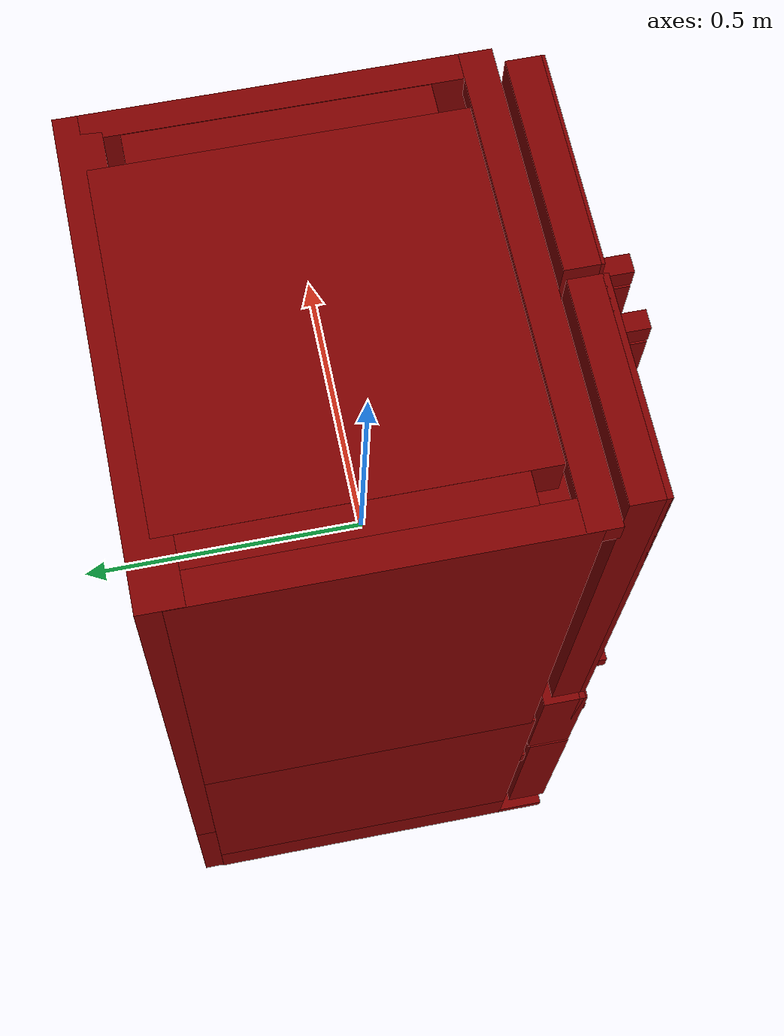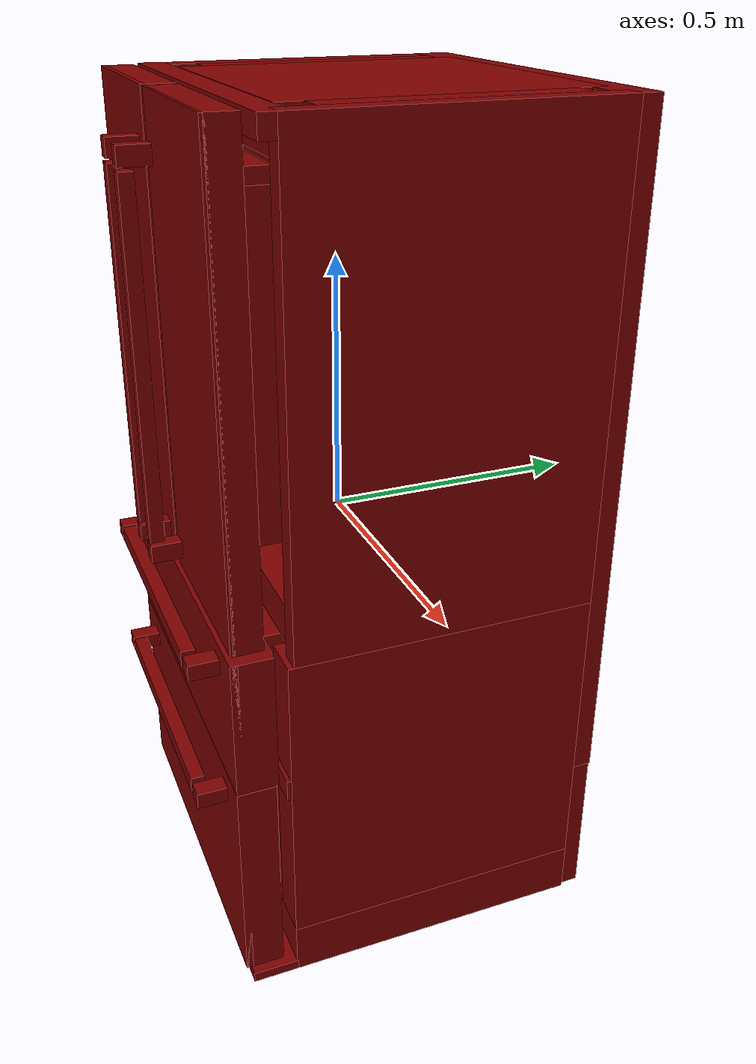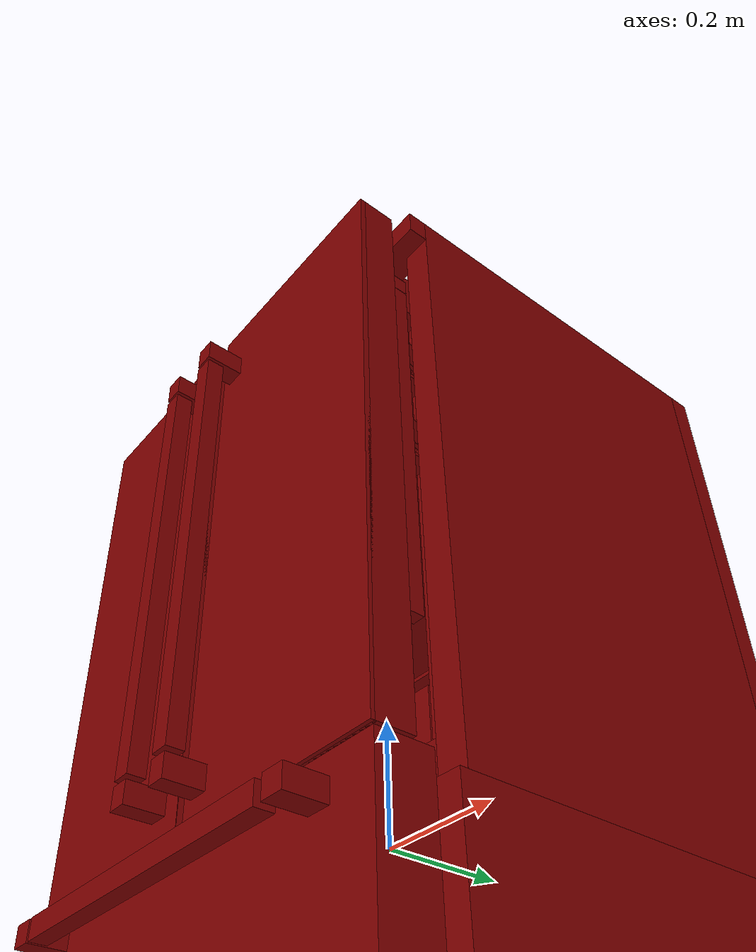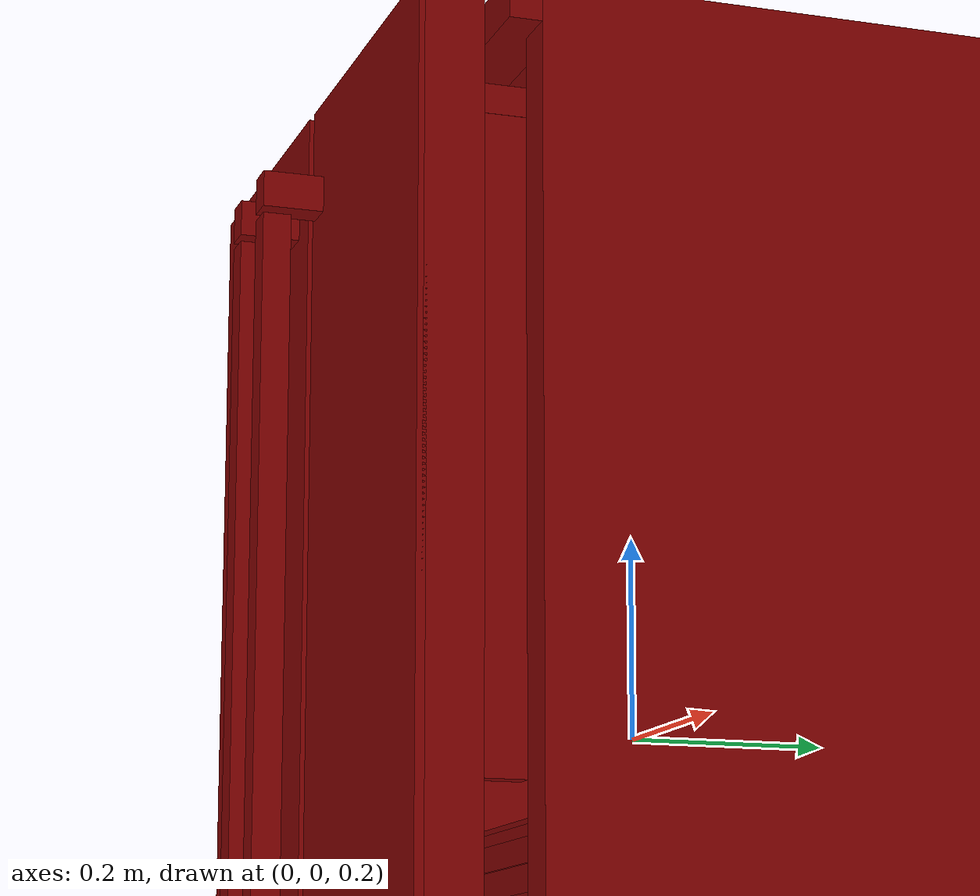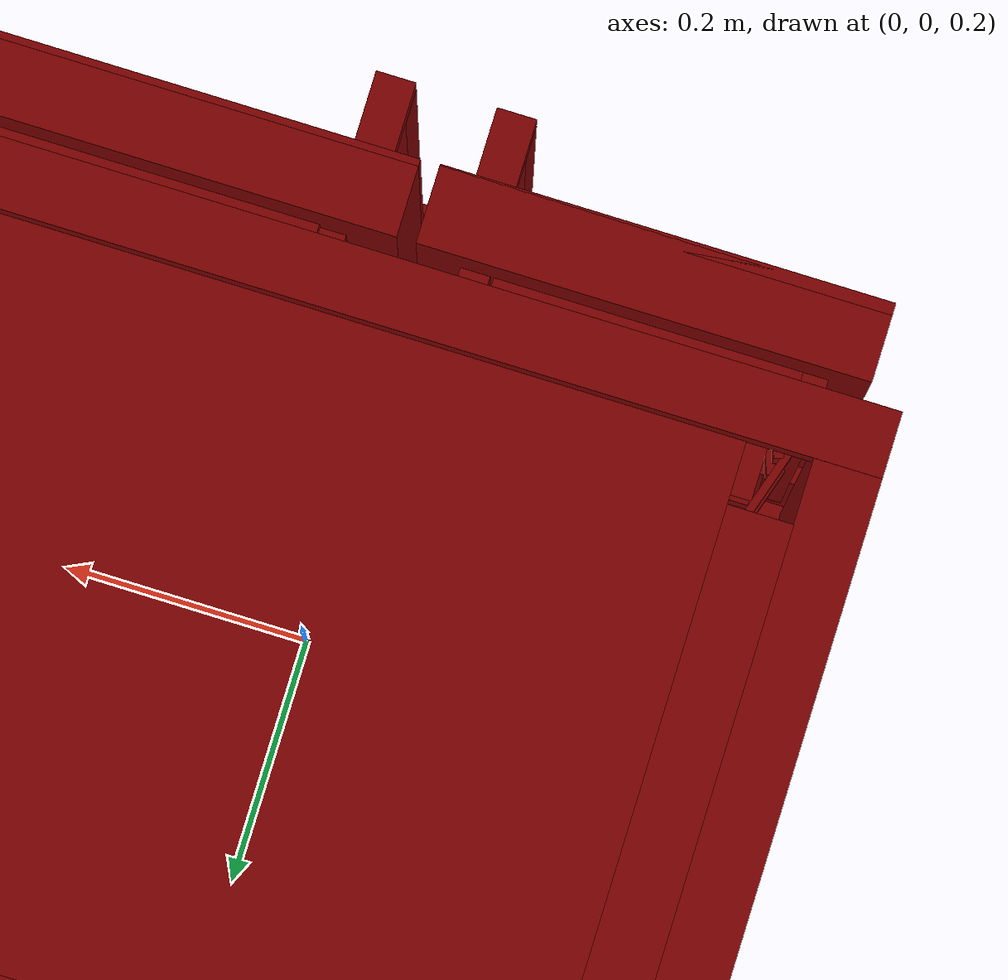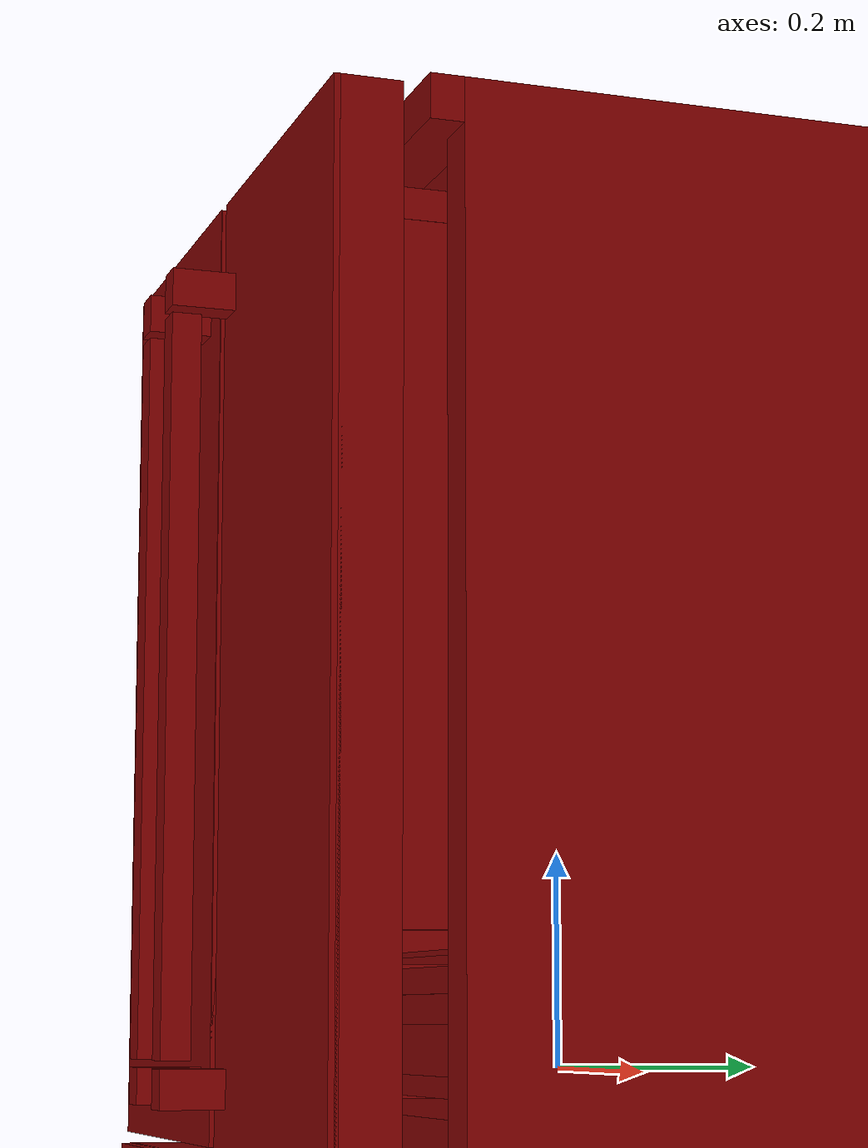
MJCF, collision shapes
<?xml version='1.0' encoding='UTF-8'?>
<mujoco model="model">
  <option timestep="0.002" gravity="0.0 0.0 -9.81"/>
  <compiler angle="radian"/>
  <asset>
    <mesh file="visuals/freezer0.obj" name="freezer0_vis"/>
    <mesh file="visuals/freezer1.obj" name="freezer1_vis"/>
    <mesh file="visuals/fridge_drawer0.obj" name="fridge_drawer0_vis"/>
    <mesh file="visuals/fridge_left_door.obj" name="fridge_left_door_vis"/>
    <mesh file="visuals/fridge_left_door_Clear.obj" name="fridge_left_door_Clear_vis"/>
    <mesh file="visuals/fridge_right_door.obj" name="fridge_right_door_vis"/>
    <mesh file="visuals/fridge_right_door_Clear.obj" name="fridge_right_door_Clear_vis"/>
    <mesh file="visuals/Body001.obj" name="Body001_vis"/>
    <mesh file="visuals/Body001_Clear.obj" name="Body001_Clear_vis"/>
    <texture file="visuals/T_BC001.png" name="Body001_material" type="2d"/>
    <material name="Body001_material" rgba="1 1 1 1.0" texture="Body001_material" shininess="2" specular="2"/>
    <texture file="visuals/T_BC001.png" name="freezer0_material" type="2d"/>
    <material name="freezer0_material" rgba="1 1 1 1.0" texture="freezer0_material" shininess="2" specular="2"/>
    <texture file="visuals/T_BC001.png" name="freezer1_material" type="2d"/>
    <material name="freezer1_material" rgba="1 1 1 1.0" texture="freezer1_material" shininess="2" specular="2"/>
    <texture file="visuals/T_BC001.png" name="fridge_drawer0_material" type="2d"/>
    <material name="fridge_drawer0_material" rgba="1 1 1 1.0" texture="fridge_drawer0_material" shininess="0.6585055291652679" specular="0.3103448502657381"/>
    <texture file="visuals/T_BC001.png" name="fridge_left_door_material" type="2d"/>
    <material name="fridge_left_door_material" rgba="1 1 1 1.0" texture="fridge_left_door_material" shininess="2" specular="2"/>
    <material name="fridge_left_door_Clear_material" rgba="0.749724805355072 0.749724805355072 0.749724805355072 0.699999988079071" shininess="0.2512328028678894" specular="0.3103448502657381"/>
    <texture file="visuals/T_BC001.png" name="fridge_right_door_material" type="2d"/>
    <material name="fridge_right_door_material" rgba="1 1 1 1.0" texture="fridge_right_door_material" shininess="2" specular="2"/>
    <material name="fridge_right_door_Clear_material" rgba="0.749724805355072 0.749724805355072 0.749724805355072 0.699999988079071" shininess="0.2512328028678894" specular="0.3103448502657381"/>
    <material name="Body001_Clear_material" rgba="0.749724805355072 0.749724805355072 0.749724805355072 0.699999988079071" shininess="0.2512328028678894" specular="0.3103448502657381"/>
  </asset>
  <default>
    <default class="visual">
      <geom conaffinity="0" contype="0" group="1" type="mesh"/>
    </default>
    <default class="collision">
      <geom group="0" rgba="0.5 0 0 0.5"/>
    </default>
    <default class="spawn">
      <geom group="0" rgba="1 1 1 0.5" contype="0" conaffinity="0"/>
      <site group="0" rgba="1 1 1 0.5"/>
    </default>
    <default class="region">
      <geom group="1" conaffinity="0" contype="0" rgba="0 1 0 0"/>
    </default>
  </default>
  <worldbody>
    <body>
      <body name="object">
        <geom mesh="Body001_vis" type="mesh" solimp="0.998 0.998 0.001" solref="0.001 1" friction="0.95 0.3 0.1" class="visual" material="Body001_material"/>
        <geom class="collision" type="box" pos="0.00429994 0.08053963 0.41524273" size="0.2578120231628418 0.23192143440246582 0.0024863099679350853" quat="1.0 0.0 0.0 0.0"/>
        <geom class="collision" type="box" pos="0.00429994 0.08053963 0.10372669" size="0.2578120231628418 0.23192211985588074 0.0024863744620233774" quat="1.0 0.0 0.0 0.0"/>
        <geom class="collision" type="box" pos="0.36522140 0.06541250 0.35242346" size="0.021884016692638397 0.29296648502349854 0.45263129472732544" quat="1.0 0.0 0.0 0.0"/>
        <geom class="collision" type="box" pos="-0.36098290 0.06286985 0.34691796" size="0.026121947914361954 0.2955096960067749 0.45772966742515564" quat="1.0 0.0 0.0 0.0"/>
        <geom class="collision" type="box" pos="0.00022345 0.36132324 0.15897222" size="0.3868793547153473 0.03420015051960945 0.6460825204849243" quat="1.0 0.0 0.0 0.0"/>
        <geom class="collision" type="box" pos="-0.00163238 0.33085490 -0.44926712" size="0.38457879424095154 0.06466865539550781 0.352914422750473" quat="1.0 0.0 0.0 0.0"/>
        <geom class="collision" type="box" pos="-0.00058310 0.13760382 -0.63301572" size="0.35854974389076233 0.10725203901529312 0.061925146728754044" quat="0.8052064180374146 0.5929946303367615 -1.3167124518090139e-16 1.2232067335595694e-24"/>
        <geom class="collision" type="box" pos="0.00407962 0.07765477 0.76442716" size="0.2884826362133026 0.28072765469551086 0.04062765836715698" quat="1.0 0.0 0.0 0.0"/>
        <geom class="collision" type="box" pos="-0.00058310 0.07654325 -0.07229346" size="0.35848572850227356 0.2862388491630554 0.037868570536375046" quat="1.0 0.0 0.0 0.0"/>
        <geom class="collision" type="box" pos="-0.34605194 0.05985736 -0.40147525" size="0.04105277359485626 0.29852595925331116 0.30139559507369995" quat="1.0 0.0 0.0 0.0"/>
        <geom class="collision" type="box" pos="0.34605136 0.05985736 -0.40147525" size="0.04105374962091446 0.29852670431137085 0.30139675736427307" quat="1.0 0.0 0.0 0.0"/>
        <geom class="collision" type="box" pos="-0.00163238 -0.21026289 -0.36398423" size="0.38458558917045593 0.03571969270706177 0.020923875272274017" quat="1.0 0.0 0.0 0.0"/>
        <geom class="collision" type="box" pos="0.00000020 0.05985809 -0.75382665" size="0.3871029019355774 0.2985268831253052 0.05122862756252289" quat="1.0 0.0 0.0 0.0"/>
        <geom class="collision" type="box" pos="-0.00058310 0.20006446 -0.59845778" size="0.35854974389076233 0.10667490214109421 0.07130120694637299" quat="0.6569743752479553 0.7539129257202148 -1.6740228450452978e-16 8.92800271459846e-24"/>
        <geom class="collision" type="box" pos="0.30282527 0.07270144 0.34711152" size="0.0396430566906929 0.22914721071720123 0.45794323086738586" quat="1.0 0.0 0.0 0.0"/>
        <geom class="collision" type="box" pos="-0.29257596 0.09765006 0.34691796" size="0.042624130845069885 0.25294435024261475 0.45775076746940613" quat="1.0 0.0 0.0 0.0"/>
        <geom class="collision" type="box" pos="0.00001201 -0.23167586 0.78562674" size="0.3870919346809387 0.025594176724553108 0.019428035244345665" quat="1.0 0.0 0.0 0.0"/>
        <geom class="collision" type="box" pos="0.29462891 -0.28104802 -0.79497960" size="0.09247613698244095 0.04488630220293999 0.010075867176055908" quat="1.0 0.0 0.0 0.0"/>
        <geom class="collision" type="box" pos="-0.29428331 -0.28104799 -0.79497960" size="0.09282137453556061 0.044886354357004166 0.010075912810862064" quat="1.0 0.0 0.0 0.0"/>
        <body name="freezer0">
          <geom class="region" name="reg_freezer0" type="box" pos="-0.00027051500000001283 -0.075523725 -0.553304625" size="0.18287641500000001 0.095773025 0.12618860499999998"/>
          <joint axis="0.0 -1.0 0.0" pos="0.00101368 -0.13383156 -0.56512382" limited="true" name="freezer0_door_joint" range="0.0 0.3" type="slide" damping="1" frictionloss="1" armature=".01" stiffness="0.05"/>
          <geom mesh="freezer0_vis" type="mesh" solimp="0.998 0.998 0.001" solref="0.001 1" friction="0.95 0.3 0.1" class="visual" material="freezer0_material"/>
          <geom class="collision" type="box" pos="0.00346250 -0.10964801 -0.68620357" size="0.22163920104503632 0.15478265285491943 0.0027201969642192125" quat="1.0 0.0 0.0 0.0"/>
          <geom class="collision" type="box" pos="0.21982875 -0.10576967 -0.55323145" size="0.02784782648086548 0.15864557027816772 0.13464730978012085" quat="1.0 0.0 0.0 0.0"/>
          <geom class="collision" type="box" pos="0.00346275 0.07007306 -0.58077767" size="0.24033810198307037 0.008362683467566967 0.09997935593128204" quat="0.9911026954650879 -0.13309930264949799 0.0 0.0"/>
          <geom class="collision" type="box" pos="-0.00009194 -0.29854404 -0.56946692" size="0.3705858886241913 0.037367336452007294 0.21259479224681854" quat="1.0 0.0 0.0 0.0"/>
          <geom class="collision" type="box" pos="0.22542089 0.05179094 -0.54816529" size="0.020509198307991028 0.11963428556919098 0.034643225371837616" quat="0.796074390411377 0.6051988005638123 1.343811153374047e-16 -1.0018506990580435e-22"/>
          <geom class="collision" type="box" pos="-0.22561473 0.05179094 -0.54816529" size="0.020509198307991028 0.11963428556919098 0.034643225371837616" quat="0.796074390411377 0.6051988005638123 1.343811153374047e-16 -1.0018506990580435e-22"/>
          <geom class="collision" type="box" pos="0.00339290 -0.23416711 -0.54298207" size="0.2627294957637787 0.0309009812772274 0.15255071222782135" quat="1.0 0.0 0.0 0.0"/>
          <geom class="collision" type="box" pos="-0.00187906 -0.37971258 -0.40571642" size="0.25582998991012573 0.013592430390417576 0.015477221459150314" quat="1.0 0.0 0.0 0.0" name="freezer0_door_handle_main"/>
          <geom class="collision" type="box" pos="0.28486242 -0.36391133 -0.40571639" size="0.01756289228796959 0.029393699020147324 0.015477233566343784" quat="1.0 0.0 0.0 0.0" name="freezer0_door_handle_2"/>
          <geom class="collision" type="box" pos="-0.28075657 -0.36391133 -0.40571645" size="0.017562907189130783 0.029393699020147324 0.015477248467504978" quat="1.0 0.0 0.0 0.0" name="freezer0_door_handle_1"/>
          <geom class="collision" type="box" pos="-0.21911839 -0.10576967 -0.55323145" size="0.025755496695637703 0.15865816175937653 0.13464730978012085" quat="1.0 0.0 0.0 0.0"/>
          <geom class="collision" type="box" pos="-0.00009194 -0.32934680 -0.56946692" size="0.3705858886241913 0.006564554758369923 0.21259479224681854" quat="1.0 0.0 0.0 0.0" name="freezer0_door_main"/>
        </body>
        <body name="freezer1">
          <geom class="region" name="reg_freezer1" type="box" pos="-0.00027051500000001283 -0.025947825 -0.23928609" size="0.18287641500000001 0.132391385 0.08487766000000002"/>
          <joint axis="0.0 -1.0 0.0" pos="0.00101367 -0.07551161 -0.21655831" limited="true" name="freezer1_door_joint" range="0.0 0.3" type="slide" damping="1" frictionloss="1" armature=".01" stiffness="0.05"/>
          <geom mesh="freezer1_vis" type="mesh" solimp="0.998 0.998 0.001" solref="0.001 1" friction="0.95 0.3 0.1" class="visual" material="freezer1_material"/>
          <geom class="collision" type="box" pos="-0.00731538 -0.06078362 -0.33128613" size="0.22138048708438873 0.20362739264965057 0.0027201951015740633" quat="1.0 0.0 0.0 0.0"/>
          <geom class="collision" type="box" pos="0.22074578 -0.05690526 -0.23913382" size="0.028469989076256752 0.20750996470451355 0.08867991715669632" quat="1.0 0.0 0.0 0.0"/>
          <geom class="collision" type="box" pos="-0.21445107 -0.05690526 -0.23913382" size="0.023944109678268433 0.20751018822193146 0.08868004381656647" quat="1.0 0.0 0.0 0.0"/>
          <geom class="collision" type="box" pos="0.00351829 0.16319073 -0.26036015" size="0.24008996784687042 0.008406518027186394 0.08296908438205719" quat="0.9585145711898804 -0.2850435972213745 9.149510929898043e-18 2.302646245811321e-18"/>
          <geom class="collision" type="box" pos="0.00166587 -0.29653868 -0.21663700" size="0.37027525901794434 0.03937269374728203 0.13647471368312836" quat="1.0 0.0 0.0 0.0"/>
          <geom class="collision" type="box" pos="0.22074578 0.03803797 -0.17746216" size="0.028470372781157494 0.20549361407756805 0.028351524844765663" quat="1.0 0.0 0.0 0.0"/>
          <geom class="collision" type="box" pos="0.22074578 0.13477162 -0.22790354" size="0.018643945455551147 0.04744146391749382 0.0580790638923645" quat="0.9578086137771606 -0.2874067723751068 -6.3817123224809e-17 -2.024741478083862e-24"/>
          <geom class="collision" type="box" pos="-0.22033565 0.13477162 -0.22790354" size="0.018643945455551147 0.04744146391749382 0.0580790638923645" quat="0.9578086137771606 -0.2874067723751068 -6.3817123224809e-17 -2.024741478083862e-24"/>
          <geom class="collision" type="box" pos="-0.22033565 0.03803797 -0.17812773" size="0.028470396995544434 0.20549383759498596 0.0276859812438488" quat="1.0 0.0 0.0 0.0"/>
          <geom class="collision" type="box" pos="-0.00204915 0.22651372 -0.19553304" size="0.24674595892429352 0.017031649127602577 0.010282968170940876" quat="1.0 0.0 0.0 0.0"/>
          <geom class="collision" type="box" pos="0.00380645 -0.22836425 -0.22228651" size="0.24851921200752258 0.03516469523310661 0.10881463438272476" quat="1.0 0.0 0.0 0.0"/>
          <geom class="collision" type="box" pos="-0.28075657 -0.36391133 -0.12384887" size="0.017562922090291977 0.029393699020147324 0.015477264299988747" quat="1.0 0.0 0.0 0.0" name="freezer1_door_handle_1"/>
          <geom class="collision" type="box" pos="0.28486242 -0.36391133 -0.12384881" size="0.01756293699145317 0.029393699020147324 0.01547727920114994" quat="1.0 0.0 0.0 0.0" name="freezer1_door_handle_2"/>
          <geom class="collision" type="box" pos="-0.00187906 -0.37971258 -0.12384884" size="0.25583112239837646 0.013592430390417576 0.015477297827601433" quat="1.0 0.0 0.0 0.0" name="freezer1_door_handle_main"/>
          <geom class="collision" type="box" pos="0.00166587 -0.32762622 -0.21663700" size="0.37027525901794434 0.0057304613292217255 0.13647471368312836" quat="1.0 0.0 0.0 0.0" name="freezer1_door_main"/>
        </body>
        <body name="fridge_drawer0">
          <geom class="region" name="reg_fridge_drawer0" type="box" pos="0.00853008999999999 0.045865735 0.04288651" size="0.19115925 0.164030845 0.04248364"/>
          <joint axis="0.0 -1.0 0.0" pos="0.00791369 0.04509950 0.03411137" limited="true" name="fridge_drawer0_joint" range="0.0 0.4" type="slide" damping="1" frictionloss="1" armature=".01" stiffness="0.05"/>
          <geom mesh="fridge_drawer0_vis" type="mesh" solimp="0.998 0.998 0.001" solref="0.001 1" friction="0.95 0.3 0.1" class="visual" material="fridge_drawer0_material"/>
          <geom class="collision" type="box" pos="0.00808736 -0.13497960 0.08540598" size="0.19737645983695984 0.007127725053578615 0.006802691146731377" quat="1.0 0.0 0.0 0.0"/>
          <geom class="collision" type="box" pos="-0.20990857 0.04549089 0.03437742" size="0.021897634491324425 0.19014325737953186 0.05790973827242851" quat="1.0 0.0 0.0 0.0"/>
          <geom class="collision" type="box" pos="0.00735539 0.22654619 0.03437742" size="0.19566050171852112 0.010331028141081333 0.05791036784648895" quat="1.0 0.0 0.0 0.0"/>
          <geom class="collision" type="box" pos="0.00665960 0.04327609 -0.01403625" size="0.23699535429477692 0.1879308670759201 0.010060291737318039" quat="1.0 0.0 0.0 0.0"/>
          <geom class="collision" type="box" pos="0.00808736 -0.14322565 0.07998265" size="0.19737647473812103 0.0017362789949402213 0.012096093967556953" quat="1.0 0.0 0.0 0.0"/>
          <geom class="collision" type="box" pos="0.00808736 -0.13629312 0.01792400" size="0.19737492501735687 0.008400548249483109 0.02294149249792099" quat="1.0 0.0 0.0 0.0"/>
          <geom class="collision" type="box" pos="0.00808736 -0.12626548 0.04385847" size="0.19737647473812103 0.0017362789949402213 0.048016659915447235" quat="1.0 0.0 0.0 0.0"/>
          <geom class="collision" type="box" pos="0.17681504 -0.13492932 0.06342971" size="0.029539743438363075 0.010116309858858585 0.021811433136463165" quat="1.0 0.0 0.0 0.0"/>
          <geom class="collision" type="box" pos="0.22614014 0.04547463 0.03437742" size="0.021860258653759956 0.1901286542415619 0.057910170406103134" quat="1.0 0.0 0.0 0.0"/>
          <geom class="collision" type="box" pos="0.00648502 -0.12695871 0.06054501" size="0.14187918603420258 0.002305061789229512 0.021040746942162514" quat="1.0 0.0 0.0 0.0"/>
          <geom class="collision" type="box" pos="-0.16343053 -0.13492932 0.06342971" size="0.029539743438363075 0.010116365738213062 0.021811502054333687" quat="1.0 0.0 0.0 0.0"/>
        </body>
        <body name="fridge_left_door">
          <joint axis="0.0 0.0 -1.0" pos="-0.34544427 -0.31172749 0.36478308" limited="true" name="fridge_left_door_joint" range="0.0 1.5707963267948966" type="hinge" damping="1" frictionloss="1" armature=".01" stiffness="0.05"/>
          <geom mesh="fridge_left_door_vis" type="mesh" solimp="0.998 0.998 0.001" solref="0.001 1" friction="0.95 0.3 0.1" class="visual" material="fridge_left_door_material"/>
          <geom class="collision" type="box" pos="-0.05180522 -0.37971258 0.34535042" size="0.015476447530090809 0.013592430390417576 0.3356543183326721" quat="1.0 0.0 0.0 0.0" name="fridge_left_door_handle_main"/>
          <geom class="collision" type="box" pos="-0.05180522 -0.36391133 -0.01431408" size="0.015477169305086136 0.029393699020147324 0.01669370010495186" quat="1.0 0.0 0.0 0.0" name="fridge_left_door_handle_1"/>
          <geom class="collision" type="box" pos="-0.05180522 -0.36391133 0.70518908" size="0.015477153472602367 0.029393699020147324 0.01756278984248638" quat="1.0 0.0 0.0 0.0" name="fridge_left_door_handle_2"/>
          <geom class="collision" type="box" pos="-0.19205970 -0.22383907 0.40688360" size="0.11058793216943741 0.05434567481279373 0.0026560176629573107" quat="1.0 0.0 0.0 0.0"/>
          <geom class="collision" type="box" pos="-0.07356167 -0.19498489 0.42777664" size="0.003092939266934991 0.02805575355887413 0.021901151165366173" quat="0.9885798096656799 0.0 0.0 0.15069818496704102"/>
          <geom class="collision" type="box" pos="-0.19003563 -0.17521169 0.44392169" size="0.11059349030256271 0.0017140626441687346 0.004185756202787161" quat="0.9622097015380859 -0.2723095715045929 -0.0 0.0"/>
          <geom class="collision" type="box" pos="-0.08153414 -0.25062093 0.42777664" size="0.0028704835567623377 0.01288655772805214 0.021901151165366173" quat="0.9840865731239319 0.0 -0.0 -0.1776898056268692"/>
          <geom class="collision" type="box" pos="-0.09724594 -0.27157285 0.42952520" size="0.0033591128885746002 0.01288655772805214 0.019200073555111885" quat="0.8508251905441284 0.0 -0.0 -0.5254489183425903"/>
          <geom class="collision" type="box" pos="-0.11413494 -0.27711564 0.42747924" size="0.0019354462856426835 0.005980806425213814 0.017154110595583916" quat="0.7541599273681641 0.0 -0.0 -0.6566908359527588"/>
          <geom class="collision" type="box" pos="-0.19156798 -0.27733248 0.41498447" size="0.07109253853559494 0.0015521845780313015 0.005146943964064121" quat="1.0 0.0 0.0 0.0"/>
          <geom class="collision" type="box" pos="-0.07589169 -0.22703306 0.42777664" size="0.0038647258188575506 0.01288655772805214 0.021901151165366173" quat="0.9840865731239319 0.0 -0.0 -0.1776898056268692"/>
          <geom class="collision" type="box" pos="-0.30819899 -0.22703306 0.42947826" size="0.0038647258188575506 0.01288655772805214 0.021901151165366173" quat="0.9840865731239319 0.0 0.0 0.1776898205280304"/>
          <geom class="collision" type="box" pos="-0.26995576 -0.27711564 0.42918086" size="0.0019354462856426835 0.005980806425213814 0.017154110595583916" quat="0.7541599273681641 0.0 0.0 0.6566908359527588"/>
          <geom class="collision" type="box" pos="-0.28684477 -0.27157285 0.43122682" size="0.0033591128885746002 0.01288655772805214 0.019200073555111885" quat="0.8508251905441284 0.0 0.0 0.5254489183425903"/>
          <geom class="collision" type="box" pos="-0.30255658 -0.25062093 0.42947826" size="0.0028704835567623377 0.01288655772805214 0.021901151165366173" quat="0.9840865731239319 0.0 0.0 0.1776898205280304"/>
          <geom class="collision" type="box" pos="-0.31052903 -0.19498489 0.42947826" size="0.003092939266934991 0.02805575355887413 0.021901151165366173" quat="0.9885798096656799 0.0 -0.0 -0.15069817006587982"/>
          <geom class="collision" type="box" pos="-0.19003563 -0.17521169 0.60272768" size="0.11059349030256271 0.0017140626441687346 0.004185756202787161" quat="0.9622097015380859 -0.2723095715045929 -0.0 0.0"/>
          <geom class="collision" type="box" pos="-0.31052903 -0.19498489 0.58828429" size="0.003092939266934991 0.02805575355887413 0.021901151165366173" quat="0.9885798096656799 0.0 -0.0 -0.15069817006587982"/>
          <geom class="collision" type="box" pos="-0.30255658 -0.25062093 0.58828429" size="0.0028704835567623377 0.01288655772805214 0.021901151165366173" quat="0.9840865731239319 0.0 0.0 0.1776898205280304"/>
          <geom class="collision" type="box" pos="-0.28684477 -0.27157285 0.59003285" size="0.0033591128885746002 0.01288655772805214 0.019200073555111885" quat="0.8508251905441284 0.0 0.0 0.5254489183425903"/>
          <geom class="collision" type="box" pos="-0.26995576 -0.27711564 0.58798686" size="0.0019354462856426835 0.005980806425213814 0.017154110595583916" quat="0.7541599273681641 0.0 0.0 0.6566908359527588"/>
          <geom class="collision" type="box" pos="-0.30819899 -0.22703306 0.58828429" size="0.0038647258188575506 0.01288655772805214 0.021901151165366173" quat="0.9840865731239319 0.0 0.0 0.1776898205280304"/>
          <geom class="collision" type="box" pos="-0.07589169 -0.22703306 0.58658263" size="0.0038647258188575506 0.01288655772805214 0.021901151165366173" quat="0.9840865731239319 0.0 -0.0 -0.1776898056268692"/>
          <geom class="collision" type="box" pos="-0.11413494 -0.27711564 0.58628521" size="0.0019354462856426835 0.005980806425213814 0.017154110595583916" quat="0.7541599273681641 0.0 -0.0 -0.6566908359527588"/>
          <geom class="collision" type="box" pos="-0.09724594 -0.27157285 0.58833119" size="0.0033591128885746002 0.01288655772805214 0.019200073555111885" quat="0.8508251905441284 0.0 -0.0 -0.5254489183425903"/>
          <geom class="collision" type="box" pos="-0.08153414 -0.25062093 0.58658263" size="0.0028704835567623377 0.01288655772805214 0.021901151165366173" quat="0.9840865731239319 0.0 -0.0 -0.1776898056268692"/>
          <geom class="collision" type="box" pos="-0.07356167 -0.19498489 0.58658263" size="0.003092939266934991 0.02805575355887413 0.021901151165366173" quat="0.9885798096656799 0.0 0.0 0.15069818496704102"/>
          <geom class="collision" type="box" pos="-0.19156798 -0.27733248 0.57379052" size="0.07109261304140091 0.0015521845780313015 0.005146951414644718" quat="1.0 0.0 0.0 0.0"/>
          <geom class="collision" type="box" pos="-0.19205970 -0.22383907 0.56568965" size="0.11059463024139404 0.05434567481279373 0.002656175522133708" quat="1.0 0.0 0.0 0.0"/>
          <geom class="collision" type="box" pos="-0.18541226 -0.30130544 0.36844772" size="0.17394804954528809 0.029942452907562256 0.4366070330142975" quat="1.0 0.0 0.0 0.0"/>
          <geom class="collision" type="box" pos="-0.05693918 -0.25041267 0.34733826" size="0.011535625904798508 0.026942642405629158 0.3783116936683655" quat="1.0 0.0 0.0 0.0"/>
          <geom class="collision" type="box" pos="-0.31978807 -0.25041267 0.41982177" size="0.009782965295016766 0.026942642405629158 0.30562931299209595" quat="1.0 0.0 0.0 0.0"/>
          <geom class="collision" type="box" pos="-0.19056979 -0.25041267 0.71564171" size="0.11949507147073746 0.02694264054298401 0.01004157867282629" quat="1.0 0.0 0.0 0.0"/>
          <geom class="collision" type="box" pos="-0.18541226 -0.32725712 0.36844778" size="0.17394804954528809 0.004683855455368757 0.43660709261894226" quat="1.0 0.0 0.0 0.0" name="fridge_left_door_main"/>
          <body name="fridge_left_door_Clear">
            <geom mesh="fridge_left_door_Clear_vis" type="mesh" solimp="0.998 0.998 0.001" solref="0.001 1" friction="0.95 0.3 0.1" class="visual" material="fridge_left_door_Clear_material"/>
            <geom class="collision" type="box" pos="-0.19205970 -0.22383907 0.40688360" size="0.11058793216943741 0.05434567481279373 0.0026560176629573107" quat="1.0 0.0 0.0 0.0"/>
            <geom class="collision" type="box" pos="-0.07356167 -0.19498489 0.42777664" size="0.003092939266934991 0.02805575355887413 0.021901151165366173" quat="0.9885798096656799 0.0 0.0 0.15069818496704102"/>
            <geom class="collision" type="box" pos="-0.19003563 -0.17521169 0.44392169" size="0.11059349030256271 0.0017140626441687346 0.004185756202787161" quat="0.9622097015380859 -0.2723095715045929 -0.0 0.0"/>
            <geom class="collision" type="box" pos="-0.08153414 -0.25062093 0.42777664" size="0.0028704835567623377 0.01288655772805214 0.021901151165366173" quat="0.9840865731239319 0.0 -0.0 -0.1776898056268692"/>
            <geom class="collision" type="box" pos="-0.09724594 -0.27157285 0.42952520" size="0.0033591128885746002 0.01288655772805214 0.019200073555111885" quat="0.8508251905441284 0.0 -0.0 -0.5254489183425903"/>
            <geom class="collision" type="box" pos="-0.11413494 -0.27711564 0.42747924" size="0.0019354462856426835 0.005980806425213814 0.017154110595583916" quat="0.7541599273681641 0.0 -0.0 -0.6566908359527588"/>
            <geom class="collision" type="box" pos="-0.19156798 -0.27733248 0.41498447" size="0.07109253853559494 0.0015521845780313015 0.005146943964064121" quat="1.0 0.0 0.0 0.0"/>
            <geom class="collision" type="box" pos="-0.07589169 -0.22703306 0.42777664" size="0.0038647258188575506 0.01288655772805214 0.021901151165366173" quat="0.9840865731239319 0.0 -0.0 -0.1776898056268692"/>
            <geom class="collision" type="box" pos="-0.30819899 -0.22703306 0.42947826" size="0.0038647258188575506 0.01288655772805214 0.021901151165366173" quat="0.9840865731239319 0.0 0.0 0.1776898205280304"/>
            <geom class="collision" type="box" pos="-0.26995576 -0.27711564 0.42918086" size="0.0019354462856426835 0.005980806425213814 0.017154110595583916" quat="0.7541599273681641 0.0 0.0 0.6566908359527588"/>
            <geom class="collision" type="box" pos="-0.28684477 -0.27157285 0.43122682" size="0.0033591128885746002 0.01288655772805214 0.019200073555111885" quat="0.8508251905441284 0.0 0.0 0.5254489183425903"/>
            <geom class="collision" type="box" pos="-0.30255658 -0.25062093 0.42947826" size="0.0028704835567623377 0.01288655772805214 0.021901151165366173" quat="0.9840865731239319 0.0 0.0 0.1776898205280304"/>
            <geom class="collision" type="box" pos="-0.31052903 -0.19498489 0.42947826" size="0.003092939266934991 0.02805575355887413 0.021901151165366173" quat="0.9885798096656799 0.0 -0.0 -0.15069817006587982"/>
            <geom class="collision" type="box" pos="-0.19003563 -0.17521169 0.60272768" size="0.11059349030256271 0.0017140626441687346 0.004185756202787161" quat="0.9622097015380859 -0.2723095715045929 -0.0 0.0"/>
            <geom class="collision" type="box" pos="-0.31052903 -0.19498489 0.58828429" size="0.003092939266934991 0.02805575355887413 0.021901151165366173" quat="0.9885798096656799 0.0 -0.0 -0.15069817006587982"/>
            <geom class="collision" type="box" pos="-0.30255658 -0.25062093 0.58828429" size="0.0028704835567623377 0.01288655772805214 0.021901151165366173" quat="0.9840865731239319 0.0 0.0 0.1776898205280304"/>
            <geom class="collision" type="box" pos="-0.28684477 -0.27157285 0.59003285" size="0.0033591128885746002 0.01288655772805214 0.019200073555111885" quat="0.8508251905441284 0.0 0.0 0.5254489183425903"/>
            <geom class="collision" type="box" pos="-0.26995576 -0.27711564 0.58798686" size="0.0019354462856426835 0.005980806425213814 0.017154110595583916" quat="0.7541599273681641 0.0 0.0 0.6566908359527588"/>
            <geom class="collision" type="box" pos="-0.30819899 -0.22703306 0.58828429" size="0.0038647258188575506 0.01288655772805214 0.021901151165366173" quat="0.9840865731239319 0.0 0.0 0.1776898205280304"/>
            <geom class="collision" type="box" pos="-0.07589169 -0.22703306 0.58658263" size="0.0038647258188575506 0.01288655772805214 0.021901151165366173" quat="0.9840865731239319 0.0 -0.0 -0.1776898056268692"/>
            <geom class="collision" type="box" pos="-0.11413494 -0.27711564 0.58628521" size="0.0019354462856426835 0.005980806425213814 0.017154110595583916" quat="0.7541599273681641 0.0 -0.0 -0.6566908359527588"/>
            <geom class="collision" type="box" pos="-0.09724594 -0.27157285 0.58833119" size="0.0033591128885746002 0.01288655772805214 0.019200073555111885" quat="0.8508251905441284 0.0 -0.0 -0.5254489183425903"/>
            <geom class="collision" type="box" pos="-0.08153414 -0.25062093 0.58658263" size="0.0028704835567623377 0.01288655772805214 0.021901151165366173" quat="0.9840865731239319 0.0 -0.0 -0.1776898056268692"/>
            <geom class="collision" type="box" pos="-0.07356167 -0.19498489 0.58658263" size="0.003092939266934991 0.02805575355887413 0.021901151165366173" quat="0.9885798096656799 0.0 0.0 0.15069818496704102"/>
            <geom class="collision" type="box" pos="-0.19156798 -0.27733248 0.57379052" size="0.07109261304140091 0.0015521845780313015 0.005146951414644718" quat="1.0 0.0 0.0 0.0"/>
            <geom class="collision" type="box" pos="-0.19205970 -0.22383907 0.56568965" size="0.11059463024139404 0.05434567481279373 0.002656175522133708" quat="1.0 0.0 0.0 0.0"/>
          </body>
        </body>
        <body name="fridge_right_door">
          <joint axis="0.0 0.0 1.0" pos="0.35031574 -0.31172749 0.36478308" limited="true" name="fridge_right_door_joint" range="0.0 1.5707963267948966" type="hinge" damping="1" frictionloss="1" armature=".01" stiffness="0.05"/>
          <geom mesh="fridge_right_door_vis" type="mesh" solimp="0.998 0.998 0.001" solref="0.001 1" friction="0.95 0.3 0.1" class="visual" material="fridge_right_door_material"/>
          <geom class="collision" type="box" pos="0.04179394 -0.36391133 -0.01518319" size="0.01547718420624733 0.029393699020147324 0.01756281964480877" quat="1.0 0.0 0.0 0.0" name="fridge_right_door_handle_1"/>
          <geom class="collision" type="box" pos="0.04179394 -0.36391133 0.70518908" size="0.015477199107408524 0.029393699020147324 0.017562834545969963" quat="1.0 0.0 0.0 0.0" name="fridge_right_door_handle_2"/>
          <geom class="collision" type="box" pos="0.04179394 -0.37971258 0.34535042" size="0.015477212145924568 0.013592430390417576 0.33567845821380615" quat="1.0 0.0 0.0 0.0" name="fridge_right_door_handle_main"/>
          <geom class="collision" type="box" pos="0.18544730 -0.21910607 0.56586734" size="0.11692734062671661 0.05434567481279373 0.00310175190679729" quat="1.0 0.0 0.0 0.0"/>
          <geom class="collision" type="box" pos="0.18669943 -0.27689018 0.57296804" size="0.0901479423046112 0.0015521845780313015 0.005656151100993156" quat="1.0 0.0 0.0 0.0"/>
          <geom class="collision" type="box" pos="0.06166650 -0.22365172 0.58858213" size="0.0038647258188575506 0.01288655772805214 0.021901151165366173" quat="0.9840865731239319 0.0 0.0 0.1776898205280304"/>
          <geom class="collision" type="box" pos="0.09382745 -0.27661103 0.58524010" size="0.0019354462856426835 0.005980806425213814 0.017154110595583916" quat="0.7541599273681641 0.0 0.0 0.6566908359527588"/>
          <geom class="collision" type="box" pos="0.07787337 -0.26987624 0.58985821" size="0.0033591128885746002 0.01288655772805214 0.019200073555111885" quat="0.8973978161811829 0.0 0.0 0.4412223994731903"/>
          <geom class="collision" type="box" pos="0.06747663 -0.24763073 0.58989045" size="0.0028704835567623377 0.01288655772805214 0.021901151165366173" quat="0.9953531622886658 0.0 0.0 0.09629158675670624"/>
          <geom class="collision" type="box" pos="0.06031815 -0.19025190 0.58907983" size="0.003092939266934991 0.02805575169622898 0.021901151165366173" quat="0.9940382242202759 0.0 -0.0 -0.10903210192918777"/>
          <geom class="collision" type="box" pos="0.18843194 -0.16964587 0.60559198" size="0.11775068938732147 0.0017140626441687346 0.004185756202787161" quat="0.9622097015380859 -0.2723095715045929 -0.0 0.0"/>
          <geom class="collision" type="box" pos="0.31044748 -0.19025190 0.58907983" size="0.003092939266934991 0.02805575169622898 0.021901151165366173" quat="0.9940382242202759 0.0 0.0 0.10903210937976837"/>
          <geom class="collision" type="box" pos="0.30604672 -0.24763073 0.58989045" size="0.0028704835567623377 0.01288655772805214 0.021901151165366173" quat="0.9953531622886658 0.0 -0.0 -0.09629159420728683"/>
          <geom class="collision" type="box" pos="0.29616477 -0.26987624 0.58985821" size="0.0033591128885746002 0.01288655772805214 0.019200073555111885" quat="0.8973978161811829 0.0 -0.0 -0.4412223994731903"/>
          <geom class="collision" type="box" pos="0.28021070 -0.27661103 0.58524010" size="0.0019354462856426835 0.005980806425213814 0.017154110595583916" quat="0.7541599273681641 0.0 -0.0 -0.6566908359527588"/>
          <geom class="collision" type="box" pos="0.31023788 -0.22365172 0.58858213" size="0.0038647258188575506 0.01288655772805214 0.021901151165366173" quat="0.9840865135192871 0.0 -0.0 -0.17768986523151398"/>
          <geom class="collision" type="box" pos="0.18669943 -0.27689018 0.41857085" size="0.09014802426099777 0.0015521845780313015 0.005656158085912466" quat="1.0 0.0 0.0 0.0"/>
          <geom class="collision" type="box" pos="0.18544730 -0.21910607 0.41191575" size="0.11692781001329422 0.05434567481279373 0.002656190190464258" quat="1.0 0.0 0.0 0.0"/>
          <geom class="collision" type="box" pos="0.18843194 -0.16964587 0.45119485" size="0.11775068938732147 0.0017140626441687346 0.004185756202787161" quat="0.9622097015380859 -0.2723095715045929 -0.0 0.0"/>
          <geom class="collision" type="box" pos="0.31044748 -0.19025190 0.43468267" size="0.003092939266934991 0.02805575169622898 0.021901151165366173" quat="0.9940382242202759 0.0 0.0 0.10903210937976837"/>
          <geom class="collision" type="box" pos="0.06031815 -0.19025190 0.43468267" size="0.003092939266934991 0.02805575169622898 0.021901151165366173" quat="0.9940382242202759 0.0 -0.0 -0.10903210192918777"/>
          <geom class="collision" type="box" pos="0.30604672 -0.24763073 0.43549329" size="0.0028704835567623377 0.01288655772805214 0.021901151165366173" quat="0.9953531622886658 0.0 -0.0 -0.09629159420728683"/>
          <geom class="collision" type="box" pos="0.06747663 -0.24763073 0.43549329" size="0.0028704835567623377 0.01288655772805214 0.021901151165366173" quat="0.9953531622886658 0.0 0.0 0.09629158675670624"/>
          <geom class="collision" type="box" pos="0.29616477 -0.26987624 0.43546105" size="0.0033591128885746002 0.01288655772805214 0.019200073555111885" quat="0.8973978161811829 0.0 -0.0 -0.4412223994731903"/>
          <geom class="collision" type="box" pos="0.07787337 -0.26987624 0.43546105" size="0.0033591128885746002 0.01288655772805214 0.019200073555111885" quat="0.8973978161811829 0.0 0.0 0.4412223994731903"/>
          <geom class="collision" type="box" pos="0.28021070 -0.27661103 0.43084297" size="0.0019354462856426835 0.005980806425213814 0.017154110595583916" quat="0.7541599273681641 0.0 -0.0 -0.6566908359527588"/>
          <geom class="collision" type="box" pos="0.09382745 -0.27661103 0.43084297" size="0.0019354462856426835 0.005980806425213814 0.017154110595583916" quat="0.7541599273681641 0.0 0.0 0.6566908359527588"/>
          <geom class="collision" type="box" pos="0.31023788 -0.22365172 0.43418497" size="0.0038647258188575506 0.01288655772805214 0.021901151165366173" quat="0.9840865135192871 0.0 -0.0 -0.17768986523151398"/>
          <geom class="collision" type="box" pos="0.06166650 -0.22365172 0.43418497" size="0.0038647258188575506 0.01288655772805214 0.021901151165366173" quat="0.9840865731239319 0.0 0.0 0.1776898205280304"/>
          <geom class="collision" type="box" pos="0.18249186 -0.29853066 0.36844564" size="0.1791578233242035 0.02716769278049469 0.43660926818847656" quat="1.0 0.0 0.0 0.0"/>
          <geom class="collision" type="box" pos="0.19752712 -0.24935293 0.71188209" size="0.13392356038093567 0.027177613228559494 0.01372672338038683" quat="1.0 0.0 0.0 0.0"/>
          <geom class="collision" type="box" pos="0.32151099 -0.24935293 0.41022483" size="0.009670224972069263 0.027177615091204643 0.2948033809661865" quat="1.0 0.0 0.0 0.0"/>
          <geom class="collision" type="box" pos="0.05464556 -0.24935293 0.33761361" size="0.011458216235041618 0.027177615091204643 0.3674013316631317" quat="1.0 0.0 0.0 0.0"/>
          <geom class="collision" type="box" pos="0.18249186 -0.32682308 0.36844558" size="0.1791578084230423 0.004249803721904755 0.4366092085838318" quat="1.0 0.0 0.0 0.0" name="fridge_right_door_main"/>
          <body name="fridge_right_door_Clear">
            <geom mesh="fridge_right_door_Clear_vis" type="mesh" solimp="0.998 0.998 0.001" solref="0.001 1" friction="0.95 0.3 0.1" class="visual" material="fridge_right_door_Clear_material"/>
            <geom class="collision" type="box" pos="0.18544730 -0.21910607 0.56586734" size="0.11692734062671661 0.05434567481279373 0.00310175190679729" quat="1.0 0.0 0.0 0.0"/>
            <geom class="collision" type="box" pos="0.18669943 -0.27689018 0.57296804" size="0.0901479423046112 0.0015521845780313015 0.005656151100993156" quat="1.0 0.0 0.0 0.0"/>
            <geom class="collision" type="box" pos="0.06166650 -0.22365172 0.58858213" size="0.0038647258188575506 0.01288655772805214 0.021901151165366173" quat="0.9840865731239319 0.0 0.0 0.1776898205280304"/>
            <geom class="collision" type="box" pos="0.09382745 -0.27661103 0.58524010" size="0.0019354462856426835 0.005980806425213814 0.017154110595583916" quat="0.7541599273681641 0.0 0.0 0.6566908359527588"/>
            <geom class="collision" type="box" pos="0.07787337 -0.26987624 0.58985821" size="0.0033591128885746002 0.01288655772805214 0.019200073555111885" quat="0.8973978161811829 0.0 0.0 0.4412223994731903"/>
            <geom class="collision" type="box" pos="0.06747663 -0.24763073 0.58989045" size="0.0028704835567623377 0.01288655772805214 0.021901151165366173" quat="0.9953531622886658 0.0 0.0 0.09629158675670624"/>
            <geom class="collision" type="box" pos="0.06031815 -0.19025190 0.58907983" size="0.003092939266934991 0.02805575169622898 0.021901151165366173" quat="0.9940382242202759 0.0 -0.0 -0.10903210192918777"/>
            <geom class="collision" type="box" pos="0.18843194 -0.16964587 0.60559198" size="0.11775068938732147 0.0017140626441687346 0.004185756202787161" quat="0.9622097015380859 -0.2723095715045929 -0.0 0.0"/>
            <geom class="collision" type="box" pos="0.31044748 -0.19025190 0.58907983" size="0.003092939266934991 0.02805575169622898 0.021901151165366173" quat="0.9940382242202759 0.0 0.0 0.10903210937976837"/>
            <geom class="collision" type="box" pos="0.30604672 -0.24763073 0.58989045" size="0.0028704835567623377 0.01288655772805214 0.021901151165366173" quat="0.9953531622886658 0.0 -0.0 -0.09629159420728683"/>
            <geom class="collision" type="box" pos="0.29616477 -0.26987624 0.58985821" size="0.0033591128885746002 0.01288655772805214 0.019200073555111885" quat="0.8973978161811829 0.0 -0.0 -0.4412223994731903"/>
            <geom class="collision" type="box" pos="0.28021070 -0.27661103 0.58524010" size="0.0019354462856426835 0.005980806425213814 0.017154110595583916" quat="0.7541599273681641 0.0 -0.0 -0.6566908359527588"/>
            <geom class="collision" type="box" pos="0.31023788 -0.22365172 0.58858213" size="0.0038647258188575506 0.01288655772805214 0.021901151165366173" quat="0.9840865135192871 0.0 -0.0 -0.17768986523151398"/>
            <geom class="collision" type="box" pos="0.18669943 -0.27689018 0.41857085" size="0.09014802426099777 0.0015521845780313015 0.005656158085912466" quat="1.0 0.0 0.0 0.0"/>
            <geom class="collision" type="box" pos="0.18544730 -0.21910607 0.41191575" size="0.11692781001329422 0.05434567481279373 0.002656190190464258" quat="1.0 0.0 0.0 0.0"/>
            <geom class="collision" type="box" pos="0.18843194 -0.16964587 0.45119485" size="0.11775068938732147 0.0017140626441687346 0.004185756202787161" quat="0.9622097015380859 -0.2723095715045929 -0.0 0.0"/>
            <geom class="collision" type="box" pos="0.31044748 -0.19025190 0.43468267" size="0.003092939266934991 0.02805575169622898 0.021901151165366173" quat="0.9940382242202759 0.0 0.0 0.10903210937976837"/>
            <geom class="collision" type="box" pos="0.06031815 -0.19025190 0.43468267" size="0.003092939266934991 0.02805575169622898 0.021901151165366173" quat="0.9940382242202759 0.0 -0.0 -0.10903210192918777"/>
            <geom class="collision" type="box" pos="0.30604672 -0.24763073 0.43549329" size="0.0028704835567623377 0.01288655772805214 0.021901151165366173" quat="0.9953531622886658 0.0 -0.0 -0.09629159420728683"/>
            <geom class="collision" type="box" pos="0.06747663 -0.24763073 0.43549329" size="0.0028704835567623377 0.01288655772805214 0.021901151165366173" quat="0.9953531622886658 0.0 0.0 0.09629158675670624"/>
            <geom class="collision" type="box" pos="0.29616477 -0.26987624 0.43546105" size="0.0033591128885746002 0.01288655772805214 0.019200073555111885" quat="0.8973978161811829 0.0 -0.0 -0.4412223994731903"/>
            <geom class="collision" type="box" pos="0.07787337 -0.26987624 0.43546105" size="0.0033591128885746002 0.01288655772805214 0.019200073555111885" quat="0.8973978161811829 0.0 0.0 0.4412223994731903"/>
            <geom class="collision" type="box" pos="0.28021070 -0.27661103 0.43084297" size="0.0019354462856426835 0.005980806425213814 0.017154110595583916" quat="0.7541599273681641 0.0 -0.0 -0.6566908359527588"/>
            <geom class="collision" type="box" pos="0.09382745 -0.27661103 0.43084297" size="0.0019354462856426835 0.005980806425213814 0.017154110595583916" quat="0.7541599273681641 0.0 0.0 0.6566908359527588"/>
            <geom class="collision" type="box" pos="0.31023788 -0.22365172 0.43418497" size="0.0038647258188575506 0.01288655772805214 0.021901151165366173" quat="0.9840865135192871 0.0 -0.0 -0.17768986523151398"/>
            <geom class="collision" type="box" pos="0.06166650 -0.22365172 0.43418497" size="0.0038647258188575506 0.01288655772805214 0.021901151165366173" quat="0.9840865731239319 0.0 0.0 0.1776898205280304"/>
          </body>
        </body>
        <body name="Body001_Clear">
          <geom mesh="Body001_Clear_vis" type="mesh" solimp="0.998 0.998 0.001" solref="0.001 1" friction="0.95 0.3 0.1" class="visual" material="Body001_Clear_material"/>
          <geom class="collision" type="box" pos="0.00429994 0.08053963 0.41524273" size="0.2578120231628418 0.23192143440246582 0.0024863099679350853" quat="1.0 0.0 0.0 0.0"/>
          <geom class="collision" type="box" pos="0.00429994 0.08053963 0.10372669" size="0.2578120231628418 0.23192211985588074 0.0024863744620233774" quat="1.0 0.0 0.0 0.0"/>
        </body>
        <geom class="region" name="reg_fridge_shelf0" type="box" pos="0.012777394999999997 0.069380835 0.259223305" size="0.244443445 0.219980425 0.147586875"/>
        <geom class="region" name="reg_fridge_shelf1" type="box" pos="0.01279139 0.069380835 0.57116336" size="0.24442945 0.219980425 0.14698610999999998"/>
        <geom class="region" name="reg_main" type="box" pos="2.0499999997536378e-07 0.02980598000000001 -3.550000000074327e-07" size="0.388105225 0.36671735 0.8060551450000001"/>
      </body>
    </body>
  </worldbody>
  <actuator>
    <motor name="freezer0_door_joint_actuator" joint="freezer0_door_joint" gear="50"/>
    <motor name="freezer1_door_joint_actuator" joint="freezer1_door_joint" gear="50"/>
    <motor name="fridge_drawer0_joint_actuator" joint="fridge_drawer0_joint" gear="50"/>
    <motor name="fridge_left_door_joint_actuator" joint="fridge_left_door_joint" gear="50"/>
    <motor name="fridge_right_door_joint_actuator" joint="fridge_right_door_joint" gear="50"/>
  </actuator>
</mujoco>
